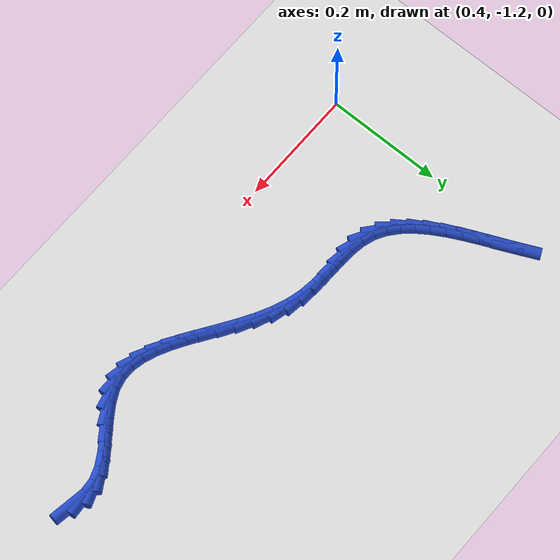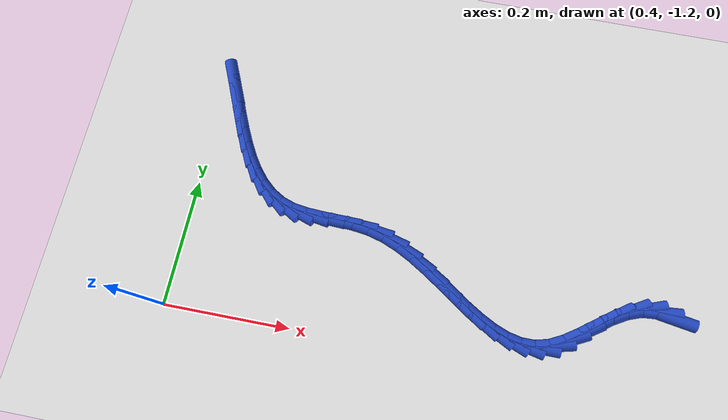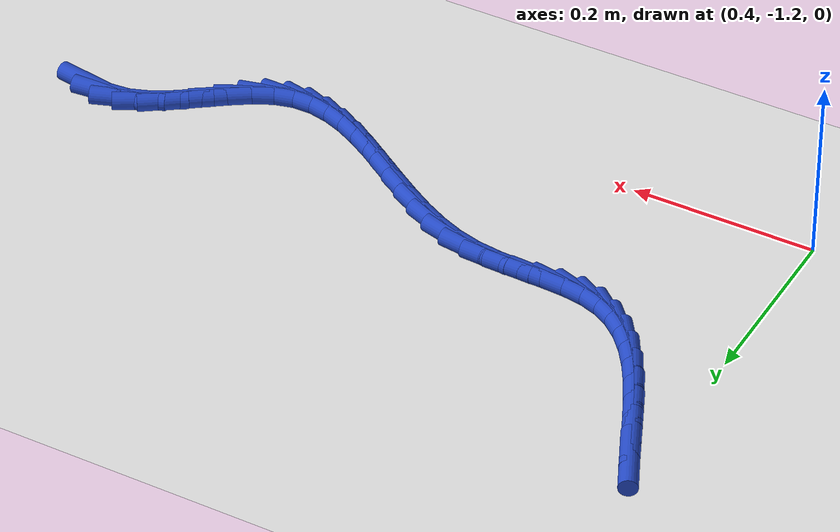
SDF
<sdf version="1.6">
 <world name="default">
  <model name="ground_plane">
   <static>1</static>
   <link name="link">
    <collision name="collision">
     <geometry><plane><normal>0 0 1</normal><size>100 100</size></plane></geometry>
     <surface><friction><ode><mu>100</mu><mu2>50</mu2></ode></friction></surface>
    </collision>
    <visual name="visual">
     <cast_shadows>0</cast_shadows>
     <geometry><plane><normal>0 0 1</normal><size>100 100</size></plane></geometry>
     <material>
      <script><uri>file://media/materials/scripts/gazebo.material</uri><name>Gazebo/WhiteGlow</name></script>
     </material>
    </visual>
   </link>
  </model>
  <model name="line">
   <link name="link_217">
    <pose>1.1701530107507865 -1.0744870240704227 0.01 0 1.57 -0.15822610895381675</pose>
    <collision name="collision">
     <geometry><cylinder><radius>0.01</radius><length>0.08</length></cylinder></geometry>
    </collision>
    <visual name="visual">
     <material>
      <script><name>Gazebo/Blue</name><uri>file://media/materials/scripts/gazebo.material</uri></script>
     </material>
     <geometry><cylinder><radius>0.01</radius><length>0.08</length></cylinder></geometry>
    </visual>
   </link>
   <link name="link_218">
    <pose>1.1473006371768142 -1.0708407018421515 0.01 0 1.57 0.0870755693961181</pose>
    <collision name="collision">
     <geometry><cylinder><radius>0.01</radius><length>0.08</length></cylinder></geometry>
    </collision>
    <visual name="visual">
     <material>
      <script><name>Gazebo/Blue</name><uri>file://media/materials/scripts/gazebo.material</uri></script>
     </material>
     <geometry><cylinder><radius>0.01</radius><length>0.08</length></cylinder></geometry>
    </visual>
   </link>
   <link name="link_219">
    <pose>1.124714576511156 -1.0728123816495683 0.01 0 1.57 0.3523061494270209</pose>
    <collision name="collision">
     <geometry><cylinder><radius>0.01</radius><length>0.08</length></cylinder></geometry>
    </collision>
    <visual name="visual">
     <material>
      <script><name>Gazebo/Blue</name><uri>file://media/materials/scripts/gazebo.material</uri></script>
     </material>
     <geometry><cylinder><radius>0.01</radius><length>0.08</length></cylinder></geometry>
    </visual>
   </link>
   <link name="link_220">
    <pose>1.1024149853420988 -1.081010695566865 0.01 0 1.57 0.5299787885622664</pose>
    <collision name="collision">
     <geometry><cylinder><radius>0.01</radius><length>0.08</length></cylinder></geometry>
    </collision>
    <visual name="visual">
     <material>
      <script><name>Gazebo/Blue</name><uri>file://media/materials/scripts/gazebo.material</uri></script>
     </material>
     <geometry><cylinder><radius>0.01</radius><length>0.08</length></cylinder></geometry>
    </visual>
   </link>
   <link name="link_221">
    <pose>1.0803583721012378 -1.0939334120471533 0.01 0 1.57 0.6178723363620789</pose>
    <collision name="collision">
     <geometry><cylinder><radius>0.01</radius><length>0.08</length></cylinder></geometry>
    </collision>
    <visual name="visual">
     <material>
      <script><name>Gazebo/Blue</name><uri>file://media/materials/scripts/gazebo.material</uri></script>
     </material>
     <geometry><cylinder><radius>0.01</radius><length>0.08</length></cylinder></geometry>
    </visual>
   </link>
   <link name="link_222">
    <pose>1.05848320882299 -1.1094801302226995 0.01 0 1.57 0.6362203582156511</pose>
    <collision name="collision">
     <geometry><cylinder><radius>0.01</radius><length>0.08</length></cylinder></geometry>
    </collision>
    <visual name="visual">
     <material>
      <script><name>Gazebo/Blue</name><uri>file://media/materials/scripts/gazebo.material</uri></script>
     </material>
     <geometry><cylinder><radius>0.01</radius><length>0.08</length></cylinder></geometry>
    </visual>
   </link>
   <link name="link_223">
    <pose>1.0367279663723001 -1.125550410440733 0.01 0 1.57 0.5889221264252865</pose>
    <collision name="collision">
     <geometry><cylinder><radius>0.01</radius><length>0.08</length></cylinder></geometry>
    </collision>
    <visual name="visual">
     <material>
      <script><name>Gazebo/Blue</name><uri>file://media/materials/scripts/gazebo.material</uri></script>
     </material>
     <geometry><cylinder><radius>0.01</radius><length>0.08</length></cylinder></geometry>
    </visual>
   </link>
   <link name="link_224">
    <pose>1.0150311156141119 -1.1400438130484813 0.01 0 1.57 0.4623967347432395</pose>
    <collision name="collision">
     <geometry><cylinder><radius>0.01</radius><length>0.08</length></cylinder></geometry>
    </collision>
    <visual name="visual">
     <material>
      <script><name>Gazebo/Blue</name><uri>file://media/materials/scripts/gazebo.material</uri></script>
     </material>
     <geometry><cylinder><radius>0.01</radius><length>0.08</length></cylinder></geometry>
    </visual>
   </link>
   <link name="link_225">
    <pose>0.9933311274133698 -1.1508598983931744 0.01 0 1.57 0.24011464622666204</pose>
    <collision name="collision">
     <geometry><cylinder><radius>0.01</radius><length>0.08</length></cylinder></geometry>
    </collision>
    <visual name="visual">
     <material>
      <script><name>Gazebo/Blue</name><uri>file://media/materials/scripts/gazebo.material</uri></script>
     </material>
     <geometry><cylinder><radius>0.01</radius><length>0.08</length></cylinder></geometry>
    </visual>
   </link>
   <link name="link_226">
    <pose>0.971568033032516 -1.1561883356414013 0.01 0 1.57 -0.004575533834987694</pose>
    <collision name="collision">
     <geometry><cylinder><radius>0.01</radius><length>0.08</length></cylinder></geometry>
    </collision>
    <visual name="visual">
     <material>
      <script><name>Gazebo/Blue</name><uri>file://media/materials/scripts/gazebo.material</uri></script>
     </material>
     <geometry><cylinder><radius>0.01</radius><length>0.08</length></cylinder></geometry>
    </visual>
   </link>
   <link name="link_227">
    <pose>0.9496919188539804 -1.156088240042281 0.01 0 1.57 -0.2113706629286202</pose>
    <collision name="collision">
     <geometry><cylinder><radius>0.01</radius><length>0.08</length></cylinder></geometry>
    </collision>
    <visual name="visual">
     <material>
      <script><name>Gazebo/Blue</name><uri>file://media/materials/scripts/gazebo.material</uri></script>
     </material>
     <geometry><cylinder><radius>0.01</radius><length>0.08</length></cylinder></geometry>
    </visual>
   </link>
   <link name="link_228">
    <pose>0.9276568585844683 -1.1513600494502154 0.01 0 1.57 -0.3671804477715844</pose>
    <collision name="collision">
     <geometry><cylinder><radius>0.01</radius><length>0.08</length></cylinder></geometry>
    </collision>
    <visual name="visual">
     <material>
      <script><name>Gazebo/Blue</name><uri>file://media/materials/scripts/gazebo.material</uri></script>
     </material>
     <geometry><cylinder><radius>0.01</radius><length>0.08</length></cylinder></geometry>
    </visual>
   </link>
   <link name="link_229">
    <pose>0.9054169359483294 -1.1428060641980202 0.01 0 1.57 -0.4753916059957309</pose>
    <collision name="collision">
     <geometry><cylinder><radius>0.01</radius><length>0.08</length></cylinder></geometry>
    </collision>
    <visual name="visual">
     <material>
      <script><name>Gazebo/Blue</name><uri>file://media/materials/scripts/gazebo.material</uri></script>
     </material>
     <geometry><cylinder><radius>0.01</radius><length>0.08</length></cylinder></geometry>
    </visual>
   </link>
   <link name="link_230">
    <pose>0.8829262346699117 -1.1312285846185115 0.01 0 1.57 -0.5444828725112818</pose>
    <collision name="collision">
     <geometry><cylinder><radius>0.01</radius><length>0.08</length></cylinder></geometry>
    </collision>
    <visual name="visual">
     <material>
      <script><name>Gazebo/Blue</name><uri>file://media/materials/scripts/gazebo.material</uri></script>
     </material>
     <geometry><cylinder><radius>0.01</radius><length>0.08</length></cylinder></geometry>
    </visual>
   </link>
   <link name="link_231">
    <pose>0.8601388384735642 -1.117429911044505 0.01 0 1.57 -0.5819189108119688</pose>
    <collision name="collision">
     <geometry><cylinder><radius>0.01</radius><length>0.08</length></cylinder></geometry>
    </collision>
    <visual name="visual">
     <material>
      <script><name>Gazebo/Blue</name><uri>file://media/materials/scripts/gazebo.material</uri></script>
     </material>
     <geometry><cylinder><radius>0.01</radius><length>0.08</length></cylinder></geometry>
    </visual>
   </link>
   <link name="link_232">
    <pose>0.8370088310836362 -1.102212343808817 0.01 0 1.57 -0.592555439455458</pose>
    <collision name="collision">
     <geometry><cylinder><radius>0.01</radius><length>0.08</length></cylinder></geometry>
    </collision>
    <visual name="visual">
     <material>
      <script><name>Gazebo/Blue</name><uri>file://media/materials/scripts/gazebo.material</uri></script>
     </material>
     <geometry><cylinder><radius>0.01</radius><length>0.08</length></cylinder></geometry>
    </visual>
   </link>
   <link name="link_233">
    <pose>0.8134902962244767 -1.0863781832442632 0.01 0 1.57 -0.5786907823811309</pose>
    <collision name="collision">
     <geometry><cylinder><radius>0.01</radius><length>0.08</length></cylinder></geometry>
    </collision>
    <visual name="visual">
     <material>
      <script><name>Gazebo/Blue</name><uri>file://media/materials/scripts/gazebo.material</uri></script>
     </material>
     <geometry><cylinder><radius>0.01</radius><length>0.08</length></cylinder></geometry>
    </visual>
   </link>
   <link name="link_234">
    <pose>0.7895373176204332 -1.070729729683659 0.01 0 1.57 -0.5404328332329625</pose>
    <collision name="collision">
     <geometry><cylinder><radius>0.01</radius><length>0.08</length></cylinder></geometry>
    </collision>
    <visual name="visual">
     <material>
      <script><name>Gazebo/Blue</name><uri>file://media/materials/scripts/gazebo.material</uri></script>
     </material>
     <geometry><cylinder><radius>0.01</radius><length>0.08</length></cylinder></geometry>
    </visual>
   </link>
   <link name="link_235">
    <pose>0.765103978995856 -1.0560692834598213 0.01 0 1.57 -0.4760799998088923</pose>
    <collision name="collision">
     <geometry><cylinder><radius>0.01</radius><length>0.08</length></cylinder></geometry>
    </collision>
    <visual name="visual">
     <material>
      <script><name>Gazebo/Blue</name><uri>file://media/materials/scripts/gazebo.material</uri></script>
     </material>
     <geometry><cylinder><radius>0.01</radius><length>0.08</length></cylinder></geometry>
    </visual>
   </link>
   <link name="link_236">
    <pose>0.7401443640750929 -1.043199144905565 0.01 0 1.57 -0.38269265534733543</pose>
    <collision name="collision">
     <geometry><cylinder><radius>0.01</radius><length>0.08</length></cylinder></geometry>
    </collision>
    <visual name="visual">
     <material>
      <script><name>Gazebo/Blue</name><uri>file://media/materials/scripts/gazebo.material</uri></script>
     </material>
     <geometry><cylinder><radius>0.01</radius><length>0.08</length></cylinder></geometry>
    </visual>
   </link>
   <link name="link_237">
    <pose>0.7146125565824932 -1.0329216143537068 0.01 0 1.57 -0.25759132329234835</pose>
    <collision name="collision">
     <geometry><cylinder><radius>0.01</radius><length>0.08</length></cylinder></geometry>
    </collision>
    <visual name="visual">
     <material>
      <script><name>Gazebo/Blue</name><uri>file://media/materials/scripts/gazebo.material</uri></script>
     </material>
     <geometry><cylinder><radius>0.01</radius><length>0.08</length></cylinder></geometry>
    </visual>
   </link>
   <link name="link_238">
    <pose>0.6884641862838071 -1.0260329816335951 0.01 0 1.57 -0.1277291261092745</pose>
    <collision name="collision">
     <geometry><cylinder><radius>0.01</radius><length>0.08</length></cylinder></geometry>
    </collision>
    <visual name="visual">
     <material>
      <script><name>Gazebo/Blue</name><uri>file://media/materials/scripts/gazebo.material</uri></script>
     </material>
     <geometry><cylinder><radius>0.01</radius><length>0.08</length></cylinder></geometry>
    </visual>
   </link>
   <link name="link_239">
    <pose>0.6618390487396157 -1.0226135601799977 0.01 0 1.57 -0.04711223837002623</pose>
    <collision name="collision">
     <geometry><cylinder><radius>0.01</radius><length>0.08</length></cylinder></geometry>
    </collision>
    <visual name="visual">
     <material>
      <script><name>Gazebo/Blue</name><uri>file://media/materials/scripts/gazebo.material</uri></script>
     </material>
     <geometry><cylinder><radius>0.01</radius><length>0.08</length></cylinder></geometry>
    </visual>
   </link>
   <link name="link_240">
    <pose>0.6352330648577874 -1.0213591645178635 0.01 0 1.57 -0.02117848956374253</pose>
    <collision name="collision">
     <geometry><cylinder><radius>0.01</radius><length>0.08</length></cylinder></geometry>
    </collision>
    <visual name="visual">
     <material>
      <script><name>Gazebo/Blue</name><uri>file://media/materials/scripts/gazebo.material</uri></script>
     </material>
     <geometry><cylinder><radius>0.01</radius><length>0.08</length></cylinder></geometry>
    </visual>
   </link>
   <link name="link_241">
    <pose>0.6091828563002654 -1.0208073779480082 0.01 0 1.57 -0.05250415220493673</pose>
    <collision name="collision">
     <geometry><cylinder><radius>0.01</radius><length>0.08</length></cylinder></geometry>
    </collision>
    <visual name="visual">
     <material>
      <script><name>Gazebo/Blue</name><uri>file://media/materials/scripts/gazebo.material</uri></script>
     </material>
     <geometry><cylinder><radius>0.01</radius><length>0.08</length></cylinder></geometry>
    </visual>
   </link>
   <link name="link_242">
    <pose>0.5842250447289936 -1.0194957837712484 0.01 0 1.57 -0.15033593086717378</pose>
    <collision name="collision">
     <geometry><cylinder><radius>0.01</radius><length>0.08</length></cylinder></geometry>
    </collision>
    <visual name="visual">
     <material>
      <script><name>Gazebo/Blue</name><uri>file://media/materials/scripts/gazebo.material</uri></script>
     </material>
     <geometry><cylinder><radius>0.01</radius><length>0.08</length></cylinder></geometry>
    </visual>
   </link>
   <link name="link_243">
    <pose>0.5608962518059152 -1.015961965288399 0.01 0 1.57 -0.3251230533998633</pose>
    <collision name="collision">
     <geometry><cylinder><radius>0.01</radius><length>0.08</length></cylinder></geometry>
    </collision>
    <visual name="visual">
     <material>
      <script><name>Gazebo/Blue</name><uri>file://media/materials/scripts/gazebo.material</uri></script>
     </material>
     <geometry><cylinder><radius>0.01</radius><length>0.08</length></cylinder></geometry>
    </visual>
   </link>
   <link name="link_244">
    <pose>0.5397014415936532 -1.008817517225226 0.01 0 1.57 -0.5283495014975524</pose>
    <collision name="collision">
     <geometry><cylinder><radius>0.01</radius><length>0.08</length></cylinder></geometry>
    </collision>
    <visual name="visual">
     <material>
      <script><name>Gazebo/Blue</name><uri>file://media/materials/scripts/gazebo.material</uri></script>
     </material>
     <geometry><cylinder><radius>0.01</radius><length>0.08</length></cylinder></geometry>
    </visual>
   </link>
   <link name="link_245">
    <pose>0.5206963725500507 -0.9977242196537587 0.01 0 1.57 -0.7068997188625552</pose>
    <collision name="collision">
     <geometry><cylinder><radius>0.01</radius><length>0.08</length></cylinder></geometry>
    </collision>
    <visual name="visual">
     <material>
      <script><name>Gazebo/Blue</name><uri>file://media/materials/scripts/gazebo.material</uri></script>
     </material>
     <geometry><cylinder><radius>0.01</radius><length>0.08</length></cylinder></geometry>
    </visual>
   </link>
   <link name="link_246">
    <pose>0.503603114198353 -0.9831239747673861 0.01 0 1.57 -0.8511213309057674</pose>
    <collision name="collision">
     <geometry><cylinder><radius>0.01</radius><length>0.08</length></cylinder></geometry>
    </collision>
    <visual name="visual">
     <material>
      <script><name>Gazebo/Blue</name><uri>file://media/materials/scripts/gazebo.material</uri></script>
     </material>
     <geometry><cylinder><radius>0.01</radius><length>0.08</length></cylinder></geometry>
    </visual>
   </link>
   <link name="link_247">
    <pose>0.4881358237047996 -0.9654771828398697 0.01 0 1.57 -0.9612619052800399</pose>
    <collision name="collision">
     <geometry><cylinder><radius>0.01</radius><length>0.08</length></cylinder></geometry>
    </collision>
    <visual name="visual">
     <material>
      <script><name>Gazebo/Blue</name><uri>file://media/materials/scripts/gazebo.material</uri></script>
     </material>
     <geometry><cylinder><radius>0.01</radius><length>0.08</length></cylinder></geometry>
    </visual>
   </link>
   <link name="link_248">
    <pose>0.4740086582356308 -0.9452442441449718 0.01 0 1.57 -1.041710793504605</pose>
    <collision name="collision">
     <geometry><cylinder><radius>0.01</radius><length>0.08</length></cylinder></geometry>
    </collision>
    <visual name="visual">
     <material>
      <script><name>Gazebo/Blue</name><uri>file://media/materials/scripts/gazebo.material</uri></script>
     </material>
     <geometry><cylinder><radius>0.01</radius><length>0.08</length></cylinder></geometry>
    </visual>
   </link>
   <link name="link_249">
    <pose>0.4609357749570856 -0.9228855589564522 0.01 0 1.57 -1.0974583476697897</pose>
    <collision name="collision">
     <geometry><cylinder><radius>0.01</radius><length>0.08</length></cylinder></geometry>
    </collision>
    <visual name="visual">
     <material>
      <script><name>Gazebo/Blue</name><uri>file://media/materials/scripts/gazebo.material</uri></script>
     </material>
     <geometry><cylinder><radius>0.01</radius><length>0.08</length></cylinder></geometry>
    </visual>
   </link>
   <link name="link_250">
    <pose>0.44863133103540415 -0.8988615275480732 0.01 0 1.57 -1.132597422830306</pose>
    <collision name="collision">
     <geometry><cylinder><radius>0.01</radius><length>0.08</length></cylinder></geometry>
    </collision>
    <visual name="visual">
     <material>
      <script><name>Gazebo/Blue</name><uri>file://media/materials/scripts/gazebo.material</uri></script>
     </material>
     <geometry><cylinder><radius>0.01</radius><length>0.08</length></cylinder></geometry>
    </visual>
   </link>
   <link name="link_251">
    <pose>0.43680948363682637 -0.8736325501935969 0.01 0 1.57 -1.1499610496067822</pose>
    <collision name="collision">
     <geometry><cylinder><radius>0.01</radius><length>0.08</length></cylinder></geometry>
    </collision>
    <visual name="visual">
     <material>
      <script><name>Gazebo/Blue</name><uri>file://media/materials/scripts/gazebo.material</uri></script>
     </material>
     <geometry><cylinder><radius>0.01</radius><length>0.08</length></cylinder></geometry>
    </visual>
   </link>
   <link name="link_252">
    <pose>0.4251843899275921 -0.8476590271667844 0.01 0 1.57 -1.1511701408592045</pose>
    <collision name="collision">
     <geometry><cylinder><radius>0.01</radius><length>0.08</length></cylinder></geometry>
    </collision>
    <visual name="visual">
     <material>
      <script><name>Gazebo/Blue</name><uri>file://media/materials/scripts/gazebo.material</uri></script>
     </material>
     <geometry><cylinder><radius>0.01</radius><length>0.08</length></cylinder></geometry>
    </visual>
   </link>
   <link name="link_253">
    <pose>0.4134702070739408 -0.821401358741397 0.01 0 1.57 -1.1367607032903535</pose>
    <collision name="collision">
     <geometry><cylinder><radius>0.01</radius><length>0.08</length></cylinder></geometry>
    </collision>
    <visual name="visual">
     <material>
      <script><name>Gazebo/Blue</name><uri>file://media/materials/scripts/gazebo.material</uri></script>
     </material>
     <geometry><cylinder><radius>0.01</radius><length>0.08</length></cylinder></geometry>
    </visual>
   </link>
  </model>
 </world>
</sdf>
